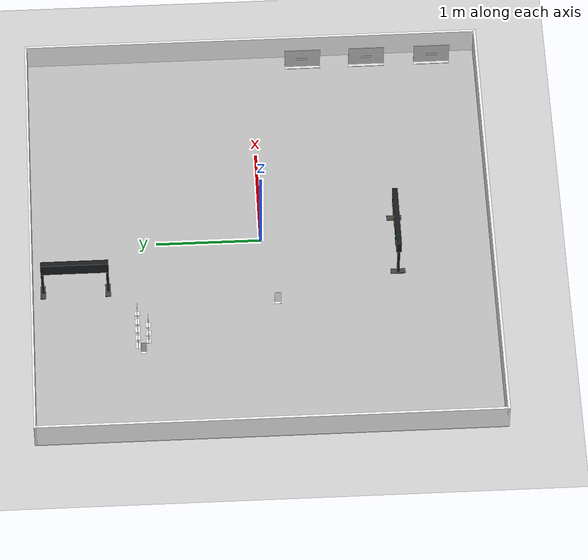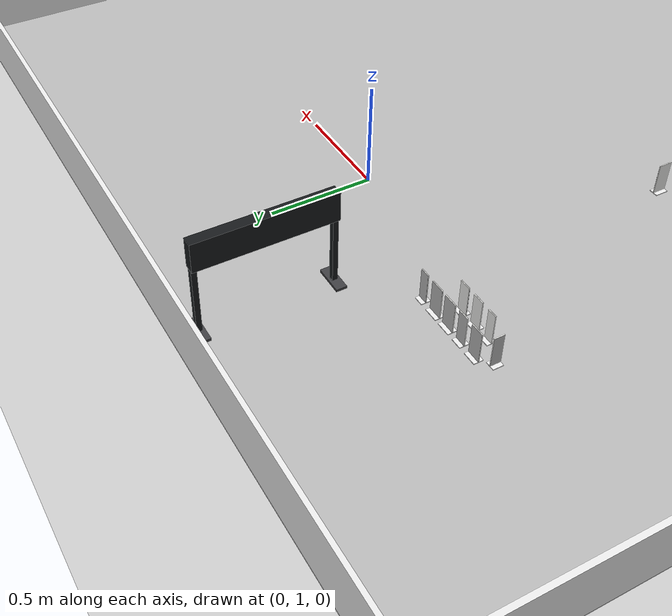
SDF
<sdf version="1.6">
 <world name="competition_arena">
  <physics name="arena_physics" default="0" type="ode">
   <max_step_size>0.002</max_step_size>
   <real_time_factor>1.0</real_time_factor>
   <real_time_update_rate>500</real_time_update_rate>
   <ode><solver><type>quick</type><iters>50</iters><sor>1.3</sor></solver></ode>
  </physics>
  <include><uri>model://sun</uri></include>
  <model name="arena_floor">
   <static>true</static>
   <pose>0 0 -0.01000 0 0 0</pose>
   <link name="link">
    <collision name="collision">
     <geometry><box><size>4.400 4.400 0.0200</size></box></geometry>
     <surface>
      <friction><ode><mu>1.0</mu><mu2>1.0</mu2></ode></friction>
      <contact><ode><kp>1e10</kp><kd>1</kd></ode></contact>
     </surface>
    </collision>
    <visual name="visual">
     <geometry><box><size>4.400 4.400 0.0200</size></box></geometry>
     <material>
      <script><uri>file://media/materials/scripts/arena.material</uri><name>Arena/Floor</name></script>
     </material>
    </visual>
   </link>
  </model>
  <include><uri>model://ground_plane</uri><pose>0 0 -0.002 0 0 0</pose></include>
  <model name="arena_walls">
   <static>true</static>
   <link name="walls">
    <collision name="wall_00">
     <pose>-0.000000 2.189289 0.150000 0 0 0</pose>
     <geometry><box><size>4.399182 0.020605 0.300000</size></box></geometry>
    </collision>
    <visual name="wall_00">
     <pose>-0.000000 2.189289 0.150000 0 0 0</pose>
     <geometry><box><size>4.399182 0.020605 0.300000</size></box></geometry>
     <material>
      <script><uri>file://media/materials/scripts/gazebo.material</uri><name>Gazebo/White</name></script>
     </material>
    </visual>
    <collision name="wall_01">
     <pose>-0.000000 -2.187572 0.150000 0 0 0</pose>
     <geometry><box><size>4.399182 0.024039 0.300000</size></box></geometry>
    </collision>
    <visual name="wall_01">
     <pose>-0.000000 -2.187572 0.150000 0 0 0</pose>
     <geometry><box><size>4.399182 0.024039 0.300000</size></box></geometry>
     <material>
      <script><uri>file://media/materials/scripts/gazebo.material</uri><name>Gazebo/White</name></script>
     </material>
    </visual>
    <collision name="wall_02">
     <pose>-2.187572 0.000000 0.150000 0 0 0</pose>
     <geometry><box><size>0.024039 4.399182 0.300000</size></box></geometry>
    </collision>
    <visual name="wall_02">
     <pose>-2.187572 0.000000 0.150000 0 0 0</pose>
     <geometry><box><size>0.024039 4.399182 0.300000</size></box></geometry>
     <material>
      <script><uri>file://media/materials/scripts/gazebo.material</uri><name>Gazebo/White</name></script>
     </material>
    </visual>
    <collision name="wall_03">
     <pose>2.187572 0.000000 0.150000 0 0 0</pose>
     <geometry><box><size>0.024039 4.399182 0.300000</size></box></geometry>
    </collision>
    <visual name="wall_03">
     <pose>2.187572 0.000000 0.150000 0 0 0</pose>
     <geometry><box><size>0.024039 4.399182 0.300000</size></box></geometry>
     <material>
      <script><uri>file://media/materials/scripts/gazebo.material</uri><name>Gazebo/White</name></script>
     </material>
    </visual>
   </link>
  </model>
  <include>
   <uri>model://standee_c01</uri>
   <name>A_north_1</name>
   <pose>-1.1420 1.2080 0 0 0 -1.5708</pose>
  </include>
  <include>
   <uri>model://standee_c02</uri>
   <name>A_north_2</name>
   <pose>-1.0520 1.2080 0 0 0 -1.5708</pose>
  </include>
  <include>
   <uri>model://standee_c03</uri>
   <name>A_north_3</name>
   <pose>-0.9620 1.2080 0 0 0 -1.5708</pose>
  </include>
  <include>
   <uri>model://standee_c04</uri>
   <name>A_north_4</name>
   <pose>-0.8720 1.2080 0 0 0 -1.5708</pose>
  </include>
  <include>
   <uri>model://standee_c05</uri>
   <name>A_north_5</name>
   <pose>-0.7820 1.2080 0 0 0 -1.5708</pose>
  </include>
  <include>
   <uri>model://standee_c06</uri>
   <name>A_south_1</name>
   <pose>-1.0970 1.1070 0 0 0 1.5708</pose>
  </include>
  <include>
   <uri>model://standee_c07</uri>
   <name>A_south_2</name>
   <pose>-1.0070 1.1070 0 0 0 1.5708</pose>
  </include>
  <include>
   <uri>model://standee_c08</uri>
   <name>A_south_3</name>
   <pose>-0.9170 1.1070 0 0 0 1.5708</pose>
  </include>
  <include><uri>model://standee_F1</uri><name>A_west_1</name><pose>-1.2120 1.1575 0 0 0 0.0000</pose></include>
  <include><uri>model://standee_F2</uri><name>B_east_2</name><pose>-0.7070 -0.1250 0 0 0 3.1416</pose></include>
  <include>
   <uri>model://traffic_light_h</uri>
   <name>tl_top</name>
   <pose>-0.5060 1.7790 0.0020 0 0 0.0000</pose>
  </include>
  <include>
   <uri>model://traffic_light_h</uri>
   <name>tl_bot</name>
   <pose>-0.1100 -1.2800 0.0020 0 0 1.5708</pose>
  </include>
  <include><uri>model://car_1</uri><name>car_1_p</name><pose>2.0560 -0.5010 0 0 0 3.1416</pose></include>
  <include><uri>model://car_2</uri><name>car_2_p</name><pose>2.0560 -1.1245 0 0 0 3.1416</pose></include>
  <include><uri>model://car_3</uri><name>car_3_p</name><pose>2.0560 -1.7620 0 0 0 3.1416</pose></include>
 </world>
</sdf>

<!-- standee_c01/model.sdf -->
<sdf version="1.7">
  <model name="standee_c01">
    <static>true</static>
    <link name="link">
      <visual name="board">
        <pose>0 0 0.0790 0 0 0</pose>
        <geometry><box><size>0.0050 0.0661 0.1500</size></box></geometry>
        <material><ambient>0.94 0.94 0.93 1</ambient><diffuse>0.94 0.94 0.93 1</diffuse></material>
      </visual>
      <visual name="art">
        <pose>-0.0020 0 0.0790 0 0 0</pose>
        <geometry><box><size>0.0012 0.0661 0.1500</size></box></geometry>
        <material>
          <script>
            <uri>model://standee_c01/materials/scripts</uri>
            <uri>model://standee_c01/materials/textures</uri>
            <name>Standee/c01</name>
          </script>
        </material>
      </visual>
      <visual name="base">
        <pose>0 0 0.0020 0 0 0</pose>
        <geometry><box><size>0.0450 0.0661 0.0040</size></box></geometry>
        <material><ambient>0.92 0.92 0.92 1</ambient><diffuse>0.92 0.92 0.92 1</diffuse></material>
      </visual>
      <collision name="col">
        <pose>0 0 0.0790 0 0 0</pose>
        <geometry><box><size>0.0050 0.0500 0.1500</size></box></geometry>
      </collision>
      <collision name="base_c">
        <pose>0 0 0.0020 0 0 0</pose>
        <geometry><box><size>0.0450 0.0661 0.0040</size></box></geometry>
      </collision>
    </link>
  </model>
</sdf>

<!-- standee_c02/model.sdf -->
<sdf version="1.7">
  <model name="standee_c02">
    <static>true</static>
    <link name="link">
      <visual name="board">
        <pose>0 0 0.0790 0 0 0</pose>
        <geometry><box><size>0.0050 0.0542 0.1500</size></box></geometry>
        <material><ambient>0.94 0.94 0.93 1</ambient><diffuse>0.94 0.94 0.93 1</diffuse></material>
      </visual>
      <visual name="art">
        <pose>-0.0020 0 0.0790 0 0 0</pose>
        <geometry><box><size>0.0012 0.0542 0.1500</size></box></geometry>
        <material>
          <script>
            <uri>model://standee_c02/materials/scripts</uri>
            <uri>model://standee_c02/materials/textures</uri>
            <name>Standee/c02</name>
          </script>
        </material>
      </visual>
      <visual name="base">
        <pose>0 0 0.0020 0 0 0</pose>
        <geometry><box><size>0.0450 0.0542 0.0040</size></box></geometry>
        <material><ambient>0.92 0.92 0.92 1</ambient><diffuse>0.92 0.92 0.92 1</diffuse></material>
      </visual>
      <collision name="col">
        <pose>0 0 0.0790 0 0 0</pose>
        <geometry><box><size>0.0050 0.0500 0.1500</size></box></geometry>
      </collision>
      <collision name="base_c">
        <pose>0 0 0.0020 0 0 0</pose>
        <geometry><box><size>0.0450 0.0542 0.0040</size></box></geometry>
      </collision>
    </link>
  </model>
</sdf>

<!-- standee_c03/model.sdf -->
<sdf version="1.7">
  <model name="standee_c03">
    <static>true</static>
    <link name="link">
      <visual name="board">
        <pose>0 0 0.0790 0 0 0</pose>
        <geometry><box><size>0.0050 0.0702 0.1500</size></box></geometry>
        <material><ambient>0.94 0.94 0.93 1</ambient><diffuse>0.94 0.94 0.93 1</diffuse></material>
      </visual>
      <visual name="art">
        <pose>-0.0020 0 0.0790 0 0 0</pose>
        <geometry><box><size>0.0012 0.0702 0.1500</size></box></geometry>
        <material>
          <script>
            <uri>model://standee_c03/materials/scripts</uri>
            <uri>model://standee_c03/materials/textures</uri>
            <name>Standee/c03</name>
          </script>
        </material>
      </visual>
      <visual name="base">
        <pose>0 0 0.0020 0 0 0</pose>
        <geometry><box><size>0.0450 0.0702 0.0040</size></box></geometry>
        <material><ambient>0.92 0.92 0.92 1</ambient><diffuse>0.92 0.92 0.92 1</diffuse></material>
      </visual>
      <collision name="col">
        <pose>0 0 0.0790 0 0 0</pose>
        <geometry><box><size>0.0050 0.0500 0.1500</size></box></geometry>
      </collision>
      <collision name="base_c">
        <pose>0 0 0.0020 0 0 0</pose>
        <geometry><box><size>0.0450 0.0702 0.0040</size></box></geometry>
      </collision>
    </link>
  </model>
</sdf>

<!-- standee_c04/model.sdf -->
<sdf version="1.7">
  <model name="standee_c04">
    <static>true</static>
    <link name="link">
      <visual name="board">
        <pose>0 0 0.0790 0 0 0</pose>
        <geometry><box><size>0.0050 0.0703 0.1500</size></box></geometry>
        <material><ambient>0.94 0.94 0.93 1</ambient><diffuse>0.94 0.94 0.93 1</diffuse></material>
      </visual>
      <visual name="art">
        <pose>-0.0020 0 0.0790 0 0 0</pose>
        <geometry><box><size>0.0012 0.0703 0.1500</size></box></geometry>
        <material>
          <script>
            <uri>model://standee_c04/materials/scripts</uri>
            <uri>model://standee_c04/materials/textures</uri>
            <name>Standee/c04</name>
          </script>
        </material>
      </visual>
      <visual name="base">
        <pose>0 0 0.0020 0 0 0</pose>
        <geometry><box><size>0.0450 0.0703 0.0040</size></box></geometry>
        <material><ambient>0.92 0.92 0.92 1</ambient><diffuse>0.92 0.92 0.92 1</diffuse></material>
      </visual>
      <collision name="col">
        <pose>0 0 0.0790 0 0 0</pose>
        <geometry><box><size>0.0050 0.0500 0.1500</size></box></geometry>
      </collision>
      <collision name="base_c">
        <pose>0 0 0.0020 0 0 0</pose>
        <geometry><box><size>0.0450 0.0703 0.0040</size></box></geometry>
      </collision>
    </link>
  </model>
</sdf>

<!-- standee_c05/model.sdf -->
<sdf version="1.7">
  <model name="standee_c05">
    <static>true</static>
    <link name="link">
      <visual name="board">
        <pose>0 0 0.0790 0 0 0</pose>
        <geometry><box><size>0.0050 0.0476 0.1500</size></box></geometry>
        <material><ambient>0.94 0.94 0.93 1</ambient><diffuse>0.94 0.94 0.93 1</diffuse></material>
      </visual>
      <visual name="art">
        <pose>-0.0020 0 0.0790 0 0 0</pose>
        <geometry><box><size>0.0012 0.0476 0.1500</size></box></geometry>
        <material>
          <script>
            <uri>model://standee_c05/materials/scripts</uri>
            <uri>model://standee_c05/materials/textures</uri>
            <name>Standee/c05</name>
          </script>
        </material>
      </visual>
      <visual name="base">
        <pose>0 0 0.0020 0 0 0</pose>
        <geometry><box><size>0.0450 0.0476 0.0040</size></box></geometry>
        <material><ambient>0.92 0.92 0.92 1</ambient><diffuse>0.92 0.92 0.92 1</diffuse></material>
      </visual>
      <collision name="col">
        <pose>0 0 0.0790 0 0 0</pose>
        <geometry><box><size>0.0050 0.0500 0.1500</size></box></geometry>
      </collision>
      <collision name="base_c">
        <pose>0 0 0.0020 0 0 0</pose>
        <geometry><box><size>0.0450 0.0476 0.0040</size></box></geometry>
      </collision>
    </link>
  </model>
</sdf>

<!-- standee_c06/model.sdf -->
<sdf version="1.7">
  <model name="standee_c06">
    <static>true</static>
    <link name="link">
      <visual name="board">
        <pose>0 0 0.0790 0 0 0</pose>
        <geometry><box><size>0.0050 0.0460 0.1500</size></box></geometry>
        <material><ambient>0.94 0.94 0.93 1</ambient><diffuse>0.94 0.94 0.93 1</diffuse></material>
      </visual>
      <visual name="art">
        <pose>-0.0020 0 0.0790 0 0 0</pose>
        <geometry><box><size>0.0012 0.0460 0.1500</size></box></geometry>
        <material>
          <script>
            <uri>model://standee_c06/materials/scripts</uri>
            <uri>model://standee_c06/materials/textures</uri>
            <name>Standee/c06</name>
          </script>
        </material>
      </visual>
      <visual name="base">
        <pose>0 0 0.0020 0 0 0</pose>
        <geometry><box><size>0.0450 0.0460 0.0040</size></box></geometry>
        <material><ambient>0.92 0.92 0.92 1</ambient><diffuse>0.92 0.92 0.92 1</diffuse></material>
      </visual>
      <collision name="col">
        <pose>0 0 0.0790 0 0 0</pose>
        <geometry><box><size>0.0050 0.0500 0.1500</size></box></geometry>
      </collision>
      <collision name="base_c">
        <pose>0 0 0.0020 0 0 0</pose>
        <geometry><box><size>0.0450 0.0460 0.0040</size></box></geometry>
      </collision>
    </link>
  </model>
</sdf>

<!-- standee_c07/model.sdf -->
<sdf version="1.7">
  <model name="standee_c07">
    <static>true</static>
    <link name="link">
      <visual name="board">
        <pose>0 0 0.0790 0 0 0</pose>
        <geometry><box><size>0.0050 0.0579 0.1500</size></box></geometry>
        <material><ambient>0.94 0.94 0.93 1</ambient><diffuse>0.94 0.94 0.93 1</diffuse></material>
      </visual>
      <visual name="art">
        <pose>-0.0020 0 0.0790 0 0 0</pose>
        <geometry><box><size>0.0012 0.0579 0.1500</size></box></geometry>
        <material>
          <script>
            <uri>model://standee_c07/materials/scripts</uri>
            <uri>model://standee_c07/materials/textures</uri>
            <name>Standee/c07</name>
          </script>
        </material>
      </visual>
      <visual name="base">
        <pose>0 0 0.0020 0 0 0</pose>
        <geometry><box><size>0.0450 0.0579 0.0040</size></box></geometry>
        <material><ambient>0.92 0.92 0.92 1</ambient><diffuse>0.92 0.92 0.92 1</diffuse></material>
      </visual>
      <collision name="col">
        <pose>0 0 0.0790 0 0 0</pose>
        <geometry><box><size>0.0050 0.0500 0.1500</size></box></geometry>
      </collision>
      <collision name="base_c">
        <pose>0 0 0.0020 0 0 0</pose>
        <geometry><box><size>0.0450 0.0579 0.0040</size></box></geometry>
      </collision>
    </link>
  </model>
</sdf>

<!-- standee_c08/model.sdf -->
<sdf version="1.7">
  <model name="standee_c08">
    <static>true</static>
    <link name="link">
      <visual name="board">
        <pose>0 0 0.0790 0 0 0</pose>
        <geometry><box><size>0.0050 0.0553 0.1500</size></box></geometry>
        <material><ambient>0.94 0.94 0.93 1</ambient><diffuse>0.94 0.94 0.93 1</diffuse></material>
      </visual>
      <visual name="art">
        <pose>-0.0020 0 0.0790 0 0 0</pose>
        <geometry><box><size>0.0012 0.0553 0.1500</size></box></geometry>
        <material>
          <script>
            <uri>model://standee_c08/materials/scripts</uri>
            <uri>model://standee_c08/materials/textures</uri>
            <name>Standee/c08</name>
          </script>
        </material>
      </visual>
      <visual name="base">
        <pose>0 0 0.0020 0 0 0</pose>
        <geometry><box><size>0.0450 0.0553 0.0040</size></box></geometry>
        <material><ambient>0.92 0.92 0.92 1</ambient><diffuse>0.92 0.92 0.92 1</diffuse></material>
      </visual>
      <collision name="col">
        <pose>0 0 0.0790 0 0 0</pose>
        <geometry><box><size>0.0050 0.0500 0.1500</size></box></geometry>
      </collision>
      <collision name="base_c">
        <pose>0 0 0.0020 0 0 0</pose>
        <geometry><box><size>0.0450 0.0553 0.0040</size></box></geometry>
      </collision>
    </link>
  </model>
</sdf>

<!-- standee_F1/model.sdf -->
<sdf version="1.7">
  <model name="standee_F1">
    <static>true</static>
    <link name="link">
      <visual name="board">
        <pose>0 0 0.0790 0 0 0</pose>
        <geometry><box><size>0.0050 0.0497 0.1500</size></box></geometry>
        <material><ambient>0.94 0.94 0.93 1</ambient><diffuse>0.94 0.94 0.93 1</diffuse></material>
      </visual>
      <visual name="art">
        <pose>-0.0020 0 0.0790 0 0 0</pose>
        <geometry><box><size>0.0012 0.0497 0.1500</size></box></geometry>
        <material>
          <script>
            <uri>model://standee_F1/materials/scripts</uri>
            <uri>model://standee_F1/materials/textures</uri>
            <name>Standee/F1</name>
          </script>
        </material>
      </visual>
      <visual name="base">
        <pose>0 0 0.0020 0 0 0</pose>
        <geometry><box><size>0.0450 0.0497 0.0040</size></box></geometry>
        <material><ambient>0.92 0.92 0.92 1</ambient><diffuse>0.92 0.92 0.92 1</diffuse></material>
      </visual>
      <collision name="col">
        <pose>0 0 0.0790 0 0 0</pose>
        <geometry><box><size>0.0050 0.0500 0.1500</size></box></geometry>
      </collision>
      <collision name="base_c">
        <pose>0 0 0.0020 0 0 0</pose>
        <geometry><box><size>0.0450 0.0497 0.0040</size></box></geometry>
      </collision>
    </link>
  </model>
</sdf>

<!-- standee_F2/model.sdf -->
<sdf version="1.7">
  <model name="standee_F2">
    <static>true</static>
    <link name="link">
      <visual name="board">
        <pose>0 0 0.0790 0 0 0</pose>
        <geometry><box><size>0.0050 0.0642 0.1500</size></box></geometry>
        <material><ambient>0.94 0.94 0.93 1</ambient><diffuse>0.94 0.94 0.93 1</diffuse></material>
      </visual>
      <visual name="art">
        <pose>-0.0020 0 0.0790 0 0 0</pose>
        <geometry><box><size>0.0012 0.0642 0.1500</size></box></geometry>
        <material>
          <script>
            <uri>model://standee_F2/materials/scripts</uri>
            <uri>model://standee_F2/materials/textures</uri>
            <name>Standee/F2</name>
          </script>
        </material>
      </visual>
      <visual name="base">
        <pose>0 0 0.0020 0 0 0</pose>
        <geometry><box><size>0.0450 0.0642 0.0040</size></box></geometry>
        <material><ambient>0.92 0.92 0.92 1</ambient><diffuse>0.92 0.92 0.92 1</diffuse></material>
      </visual>
      <collision name="col">
        <pose>0 0 0.0790 0 0 0</pose>
        <geometry><box><size>0.0050 0.0500 0.1500</size></box></geometry>
      </collision>
      <collision name="base_c">
        <pose>0 0 0.0020 0 0 0</pose>
        <geometry><box><size>0.0450 0.0642 0.0040</size></box></geometry>
      </collision>
    </link>
  </model>
</sdf>

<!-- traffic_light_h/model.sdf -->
<sdf version="1.7">
  <model name="traffic_light_h">
    <!-- 按官方尺寸生成, 见 tools/setup_traffic_lights.py 顶部说明 -->
    <static>false</static>
    <self_collide>false</self_collide>
    <link name="base">
      <gravity>false</gravity>
      <inertial><pose>0 0 0.410 0 0 0</pose><mass>8</mass><inertia><ixx>0.009</ixx><ixy>0</ixy><ixz>0</ixz><iyy>0.139</iyy><iyz>0</iyz><izz>0.143</izz></inertia></inertial>
      <visual name="housing"><pose>0 0 0.410 0 0 0</pose><geometry><box><size>0.050 0.640 0.140</size></box></geometry><material><ambient>0.090 0.102 0.110 1.00</ambient><diffuse>0.090 0.102 0.110 1.00</diffuse></material></visual>
      <collision name="housing_c"><pose>0 0 0.410 0 0 0</pose><geometry><box><size>0.050 0.640 0.140</size></box></geometry></collision>
      <visual name="post0"><pose>0 -0.307 0.170 0 0 0</pose><geometry><box><size>0.025 0.025 0.340</size></box></geometry><material><ambient>0.090 0.102 0.110 1.00</ambient><diffuse>0.090 0.102 0.110 1.00</diffuse></material></visual>
      <collision name="post0_c"><pose>0 -0.307 0.170 0 0 0</pose><geometry><box><size>0.025 0.025 0.340</size></box></geometry><surface><friction><ode><mu>5.0</mu><mu2>5.0</mu2></ode></friction></surface></collision>
      <visual name="foot0"><pose>0 -0.307 0.006 0 0 0</pose><geometry><box><size>0.140 0.050 0.012</size></box></geometry><material><ambient>0.25 0.25 0.26 1</ambient><diffuse>0.25 0.25 0.26 1</diffuse></material></visual>
      <collision name="foot0_c"><pose>0 -0.307 0.006 0 0 0</pose><geometry><box><size>0.140 0.050 0.012</size></box></geometry><surface><friction><ode><mu>5.0</mu><mu2>5.0</mu2></ode></friction></surface></collision>
      <visual name="post1"><pose>0 0.307 0.170 0 0 0</pose><geometry><box><size>0.025 0.025 0.340</size></box></geometry><material><ambient>0.090 0.102 0.110 1.00</ambient><diffuse>0.090 0.102 0.110 1.00</diffuse></material></visual>
      <collision name="post1_c"><pose>0 0.307 0.170 0 0 0</pose><geometry><box><size>0.025 0.025 0.340</size></box></geometry><surface><friction><ode><mu>5.0</mu><mu2>5.0</mu2></ode></friction></surface></collision>
      <visual name="foot1"><pose>0 0.307 0.006 0 0 0</pose><geometry><box><size>0.140 0.050 0.012</size></box></geometry><material><ambient>0.25 0.25 0.26 1</ambient><diffuse>0.25 0.25 0.26 1</diffuse></material></visual>
      <collision name="foot1_c"><pose>0 0.307 0.006 0 0 0</pose><geometry><box><size>0.140 0.050 0.012</size></box></geometry><surface><friction><ode><mu>5.0</mu><mu2>5.0</mu2></ode></friction></surface></collision>
      <visual name="lens_red"><pose>0.0255 -0.220 0.410 0 1.5708 0</pose><geometry><cylinder><radius>0.0425</radius><length>0.0060</length></cylinder></geometry><material><ambient>0.090 0.102 0.110 1.00</ambient><diffuse>0.090 0.102 0.110 1.00</diffuse></material></visual>
      <visual name="lensface_red"><pose>0.0291 -0.220 0.410 0 0 0</pose><geometry><box><size>0.0012 0.0860 0.0860</size></box></geometry><material><script><uri>model://traffic_light_h/materials/scripts</uri><uri>model://traffic_light_h/materials/textures</uri><name>LightLens/red_off</name></script></material></visual>
      <visual name="lens_yellow"><pose>0.0255 0.000 0.410 0 1.5708 0</pose><geometry><cylinder><radius>0.0425</radius><length>0.0060</length></cylinder></geometry><material><ambient>0.090 0.102 0.110 1.00</ambient><diffuse>0.090 0.102 0.110 1.00</diffuse></material></visual>
      <visual name="lensface_yellow"><pose>0.0291 0.000 0.410 0 0 0</pose><geometry><box><size>0.0012 0.0860 0.0860</size></box></geometry><material><script><uri>model://traffic_light_h/materials/scripts</uri><uri>model://traffic_light_h/materials/textures</uri><name>LightLens/yellow_off</name></script></material></visual>
      <visual name="lens_green"><pose>0.0255 0.220 0.410 0 1.5708 0</pose><geometry><cylinder><radius>0.0425</radius><length>0.0060</length></cylinder></geometry><material><ambient>0.090 0.102 0.110 1.00</ambient><diffuse>0.090 0.102 0.110 1.00</diffuse></material></visual>
      <visual name="lensface_green"><pose>0.0291 0.220 0.410 0 0 0</pose><geometry><box><size>0.0012 0.0860 0.0860</size></box></geometry><material><script><uri>model://traffic_light_h/materials/scripts</uri><uri>model://traffic_light_h/materials/textures</uri><name>LightLens/green_off</name></script></material></visual>
    </link>
    <link name="lamp_red"><gravity>false</gravity><pose>0.0000 -0.220 0.410 0 0 0</pose><inertial><mass>0.02</mass><inertia><ixx>1e-5</ixx><ixy>0</ixy><ixz>0</ixz><iyy>1e-5</iyy><iyz>0</iyz><izz>1e-5</izz></inertia></inertial><visual name="lamp"><pose>0 0 0 0 1.5708 0</pose><geometry><cylinder><radius>0.0425</radius><length>0.0040</length></cylinder></geometry><material><ambient>0.969 0.227 0.086 1.00</ambient><diffuse>0.969 0.227 0.086 1.00</diffuse><emissive>0.969 0.227 0.086 1.00</emissive></material></visual><visual name="lampface"><pose>0.0026 0 0 0 0 0</pose><geometry><box><size>0.0012 0.0860 0.0860</size></box></geometry><material><script><uri>model://traffic_light_h/materials/scripts</uri><uri>model://traffic_light_h/materials/textures</uri><name>LightLamp/red_on</name></script></material></visual></link>
    <joint name="j_red" type="prismatic"><parent>base</parent><child>lamp_red</child><pose>0 0 0 0 0 0</pose><axis><xyz>1 0 0</xyz><limit><lower>0.000</lower><upper>0.035</upper><effort>1</effort><velocity>1</velocity></limit></axis></joint>
    <link name="lamp_yellow"><gravity>false</gravity><pose>0.0000 0.000 0.410 0 0 0</pose><inertial><mass>0.02</mass><inertia><ixx>1e-5</ixx><ixy>0</ixy><ixz>0</ixz><iyy>1e-5</iyy><iyz>0</iyz><izz>1e-5</izz></inertia></inertial><visual name="lamp"><pose>0 0 0 0 1.5708 0</pose><geometry><cylinder><radius>0.0425</radius><length>0.0040</length></cylinder></geometry><material><ambient>0.988 0.976 0.188 1.00</ambient><diffuse>0.988 0.976 0.188 1.00</diffuse><emissive>0.988 0.976 0.188 1.00</emissive></material></visual><visual name="lampface"><pose>0.0026 0 0 0 0 0</pose><geometry><box><size>0.0012 0.0860 0.0860</size></box></geometry><material><script><uri>model://traffic_light_h/materials/scripts</uri><uri>model://traffic_light_h/materials/textures</uri><name>LightLamp/yellow_on</name></script></material></visual></link>
    <joint name="j_yellow" type="prismatic"><parent>base</parent><child>lamp_yellow</child><pose>0 0 0 0 0 0</pose><axis><xyz>1 0 0</xyz><limit><lower>0.000</lower><upper>0.035</upper><effort>1</effort><velocity>1</velocity></limit></axis></joint>
    <link name="lamp_green"><gravity>false</gravity><pose>0.0000 0.220 0.410 0 0 0</pose><inertial><mass>0.02</mass><inertia><ixx>1e-5</ixx><ixy>0</ixy><ixz>0</ixz><iyy>1e-5</iyy><iyz>0</iyz><izz>1e-5</izz></inertia></inertial><visual name="lamp"><pose>0 0 0 0 1.5708 0</pose><geometry><cylinder><radius>0.0425</radius><length>0.0040</length></cylinder></geometry><material><ambient>0.086 0.941 0.529 1.00</ambient><diffuse>0.086 0.941 0.529 1.00</diffuse><emissive>0.086 0.941 0.529 1.00</emissive></material></visual><visual name="lampface"><pose>0.0026 0 0 0 0 0</pose><geometry><box><size>0.0012 0.0860 0.0860</size></box></geometry><material><script><uri>model://traffic_light_h/materials/scripts</uri><uri>model://traffic_light_h/materials/textures</uri><name>LightLamp/green_on</name></script></material></visual></link>
    <joint name="j_green" type="prismatic"><parent>base</parent><child>lamp_green</child><pose>0 0 0 0 0 0</pose><axis><xyz>1 0 0</xyz><limit><lower>0.000</lower><upper>0.035</upper><effort>1</effort><velocity>1</velocity></limit></axis></joint>
  </model>
</sdf>

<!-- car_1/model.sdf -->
<sdf version="1.7">
  <model name="car_1">
    <!-- 车辆立牌 + 车牌 (陕G·5JXFN)
         车板 0.345 x 0.250 x 0.005 m (官方 34.5 x 25 cm x 5mm)
         车牌 0.095 x 0.030 m (官方 9.5 x 3 cm), 贴在正面后保险杠中间 -->
    <static>true</static>
    <link name="link">
      <visual name="body">
        <pose>0 0 0.1310 0 0 0</pose>
        <geometry><box><size>0.0050 0.3450 0.2500</size></box></geometry>
        <material><script>
          <uri>model://car_1/materials/scripts</uri>
          <uri>model://car_1/materials/textures</uri>
          <name>Car/Body_car_1</name>
        </script></material>
      </visual>
      <visual name="plate">
        <pose>0.0040 0.0000 0.1225 0 0 0</pose>
        <geometry><box><size>0.0030 0.0950 0.0300</size></box></geometry>
        <material><script>
          <uri>model://car_1/materials/scripts</uri>
          <uri>model://car_1/materials/textures</uri>
          <name>Car/Plate_car_1</name>
        </script></material>
      </visual>
      <visual name="base">
        <pose>0 0 0.0030 0 0 0</pose>
        <geometry><box><size>0.060 0.3450 0.0060</size></box></geometry>
        <material><ambient>0.85 0.85 0.85 1</ambient><diffuse>0.85 0.85 0.85 1</diffuse></material>
      </visual>
      <collision name="col">
        <pose>0 0 0.1310 0 0 0</pose>
        <geometry><box><size>0.0050 0.3450 0.2500</size></box></geometry>
      </collision>
      <collision name="base_c">
        <pose>0 0 0.0030 0 0 0</pose>
        <geometry><box><size>0.060 0.3450 0.0060</size></box></geometry>
      </collision>
    </link>
  </model>
</sdf>

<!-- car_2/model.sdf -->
<sdf version="1.7">
  <model name="car_2">
    <!-- 车辆立牌 + 车牌 (陕W·5QG5S)
         车板 0.345 x 0.250 x 0.005 m (官方 34.5 x 25 cm x 5mm)
         车牌 0.095 x 0.030 m (官方 9.5 x 3 cm), 贴在正面后保险杠中间 -->
    <static>true</static>
    <link name="link">
      <visual name="body">
        <pose>0 0 0.1310 0 0 0</pose>
        <geometry><box><size>0.0050 0.3450 0.2500</size></box></geometry>
        <material><script>
          <uri>model://car_2/materials/scripts</uri>
          <uri>model://car_2/materials/textures</uri>
          <name>Car/Body_car_2</name>
        </script></material>
      </visual>
      <visual name="plate">
        <pose>0.0040 0.0000 0.1225 0 0 0</pose>
        <geometry><box><size>0.0030 0.0950 0.0300</size></box></geometry>
        <material><script>
          <uri>model://car_2/materials/scripts</uri>
          <uri>model://car_2/materials/textures</uri>
          <name>Car/Plate_car_2</name>
        </script></material>
      </visual>
      <visual name="base">
        <pose>0 0 0.0030 0 0 0</pose>
        <geometry><box><size>0.060 0.3450 0.0060</size></box></geometry>
        <material><ambient>0.85 0.85 0.85 1</ambient><diffuse>0.85 0.85 0.85 1</diffuse></material>
      </visual>
      <collision name="col">
        <pose>0 0 0.1310 0 0 0</pose>
        <geometry><box><size>0.0050 0.3450 0.2500</size></box></geometry>
      </collision>
      <collision name="base_c">
        <pose>0 0 0.0030 0 0 0</pose>
        <geometry><box><size>0.060 0.3450 0.0060</size></box></geometry>
      </collision>
    </link>
  </model>
</sdf>

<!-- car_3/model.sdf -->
<sdf version="1.7">
  <model name="car_3">
    <!-- 车辆立牌 + 车牌 (黑L·V006C)
         车板 0.345 x 0.250 x 0.005 m (官方 34.5 x 25 cm x 5mm)
         车牌 0.095 x 0.030 m (官方 9.5 x 3 cm), 贴在正面后保险杠中间 -->
    <static>true</static>
    <link name="link">
      <visual name="body">
        <pose>0 0 0.1310 0 0 0</pose>
        <geometry><box><size>0.0050 0.3450 0.2500</size></box></geometry>
        <material><script>
          <uri>model://car_3/materials/scripts</uri>
          <uri>model://car_3/materials/textures</uri>
          <name>Car/Body_car_3</name>
        </script></material>
      </visual>
      <visual name="plate">
        <pose>0.0040 0.0000 0.1225 0 0 0</pose>
        <geometry><box><size>0.0030 0.0950 0.0300</size></box></geometry>
        <material><script>
          <uri>model://car_3/materials/scripts</uri>
          <uri>model://car_3/materials/textures</uri>
          <name>Car/Plate_car_3</name>
        </script></material>
      </visual>
      <visual name="base">
        <pose>0 0 0.0030 0 0 0</pose>
        <geometry><box><size>0.060 0.3450 0.0060</size></box></geometry>
        <material><ambient>0.85 0.85 0.85 1</ambient><diffuse>0.85 0.85 0.85 1</diffuse></material>
      </visual>
      <collision name="col">
        <pose>0 0 0.1310 0 0 0</pose>
        <geometry><box><size>0.0050 0.3450 0.2500</size></box></geometry>
      </collision>
      <collision name="base_c">
        <pose>0 0 0.0030 0 0 0</pose>
        <geometry><box><size>0.060 0.3450 0.0060</size></box></geometry>
      </collision>
    </link>
  </model>
</sdf>
